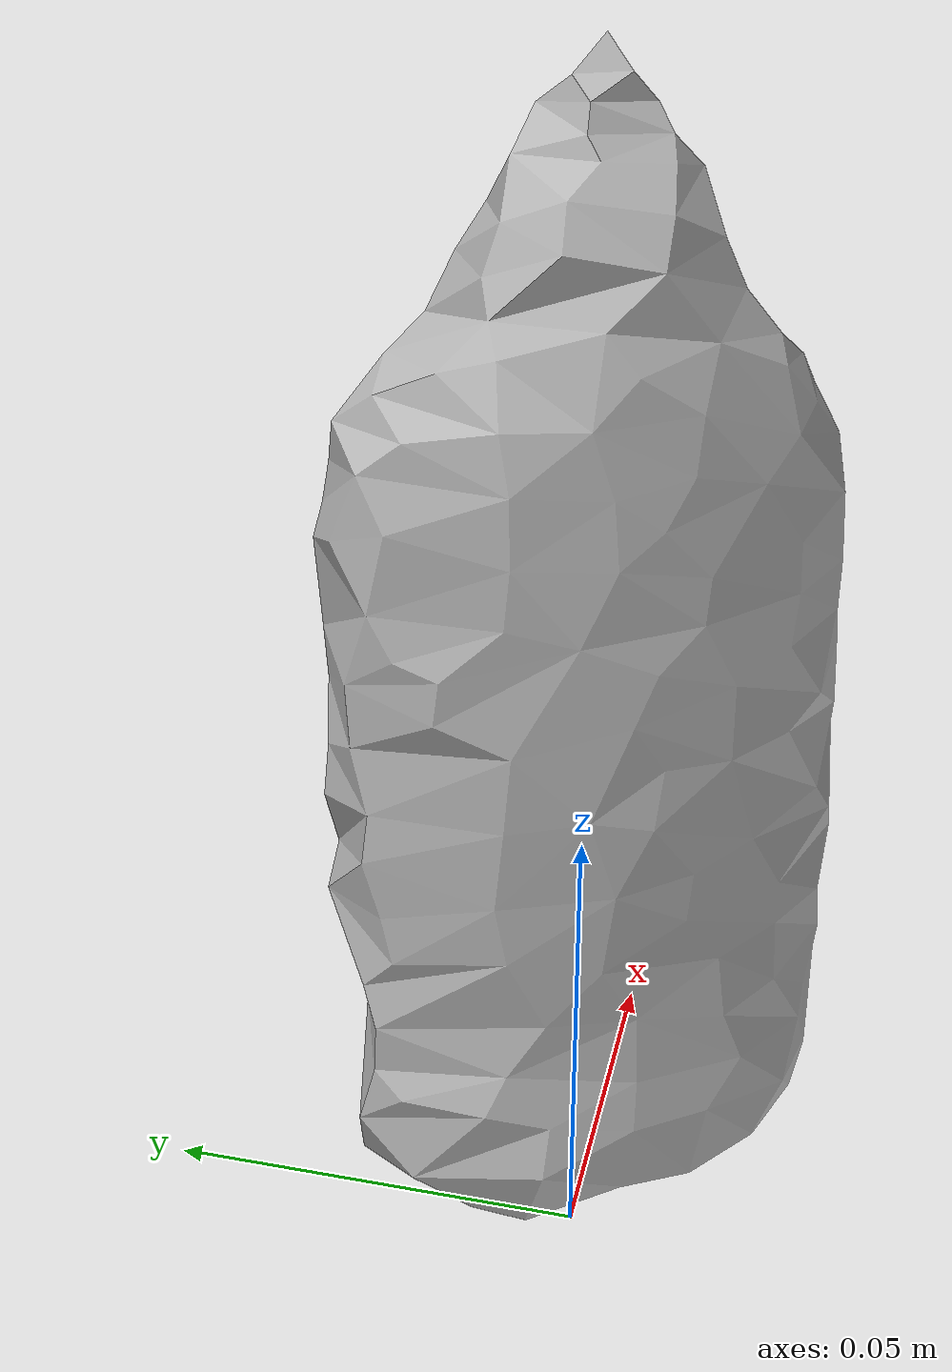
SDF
<?xml version="1.0" ?>
<sdf version="1.4">
  <model name="glue">
    <link name="glue_link">
      <inertial>
        <pose>0 0 0 0 0 0</pose>
        <mass>0.08</mass>
      </inertial>

      <visual name="glue_visual">
        <pose>0 0 0 0 0 0</pose>
        <material>
          <script>
            <uri>model://glue/materials/scripts</uri>
            <uri>model://glue/materials/textures</uri>
            <name>glue</name>
          </script>
        </material>
        <geometry>
          <mesh>
            <uri>model://glue/meshes/glue.dae</uri>
          </mesh>
        </geometry>
      </visual>

      <collision name="glue_collision">
        <pose>0 0 0 0 0 0</pose>
        <geometry>
          <mesh>
            <uri>model://glue/meshes/glue.dae</uri>
          </mesh>
        </geometry>
        <surface>
          <friction>
            <ode>
              <mu>0.8</mu>
              <mu2>0.8</mu2>
            </ode>
          </friction>
        </surface>
      </collision>

    </link>
  </model>
</sdf>
